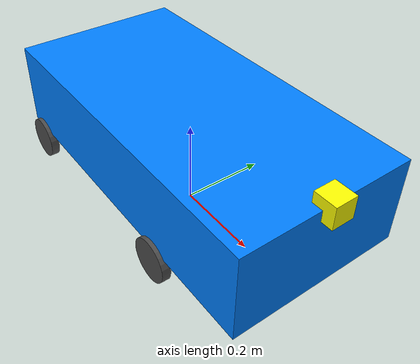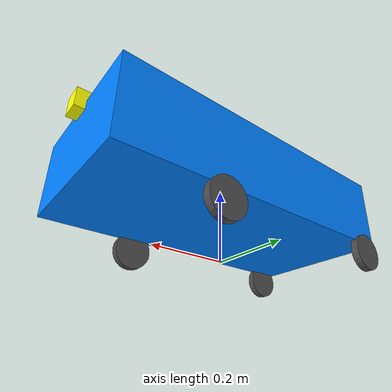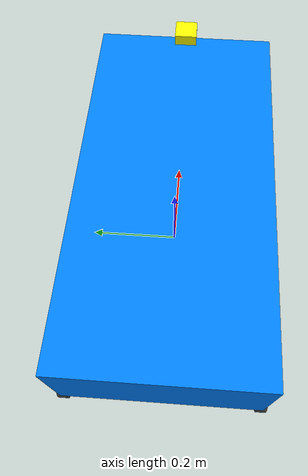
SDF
<?xml version="1.0"?>
<sdf version="1.6">
  <model name="sliping_robot">
    <static>false</static>
    <pose>0 0 0 0 0 0</pose>

    <!-- ============================
         P3D Plugin (if you re-enable)
         ============================ -->
    <plugin name="ground_truth_plugin" filename="libgazebo_ros_p3d.so">
      <frameName>world</frameName>
      <bodyName>base_link</bodyName>
      <topicName>ground_truth/odometry</topicName>
      <updateRate>30</updateRate>
    </plugin>

    <!-- ============================
         BASE LINK (with sensors)
         ============================ -->
    <link name="base_link">
      <selfCollide>false</selfCollide>
      <pose>0 0 0.18 0 0 0</pose>
      <inertial>
        <mass>5.0</mass>
        <inertia>
          <ixx>0.25</ixx><ixy>0.0</ixy><ixz>0.0</ixz>
          <iyy>0.25</iyy><iyz>0.0</iyz><izz>0.25</izz>
        </inertia>
      </inertial>

      <!-- Collision -->
      <collision name="base_collision">
        <geometry>
          <box>
            <size>0.8 0.4 0.2</size>
          </box>
        </geometry>
        <surface>
          <contact>
            <ode>
              <min_depth>0.001</min_depth>
              <max_vel>100</max_vel>
            </ode>
          </contact>
        </surface>
      </collision>

      <!-- Visual -->
      <visual name="base_visual">
        <geometry>
          <box>
            <size>0.8 0.4 0.2</size>
          </box>
        </geometry>
        <material>
          <ambient>0 0.5 1 1</ambient>
          <diffuse>0 0.5 1 1</diffuse>
        </material>
      </visual>
      <visual name="camera_imu_visual">
        <pose>0.4 0 0.1 0 0 0</pose>
        <geometry>
          <box>
            <size>0.05 0.05 0.05</size>
          </box>
        </geometry>
        <material>
          <ambient>1 1 0 1</ambient>
          <diffuse>1 1 0 1</diffuse>
        </material>
      </visual>

      <!-- IMU Sensor -->
      <sensor name="imu_sensor" type="imu">
        <pose>0.4 0 0.1 0 0 0</pose>
        <always_on>true</always_on>
        <plugin name="imu_plugin" filename="libgazebo_ros_imu_sensor.so">
          <topicName>/imu/data</topicName>
          <bodyName>base_link</bodyName>
          <updateRateHZ>200</updateRateHZ>
          <gaussianNoise>0.001</gaussianNoise>
          <frameName>base_link</frameName>
          <initialOrientationAsReference>false</initialOrientationAsReference>
        </plugin>
      </sensor>

      <!-- Camera Sensor -->
      <sensor name="camera_sensor" type="camera">
        <pose>0.4 0 0.1 0 0 0</pose>
        <camera>
          <horizontal_fov>1.0472</horizontal_fov>
          <image>
            <width>640</width>
            <height>480</height>
          </image>
          <clip>
            <near>0.05</near>
            <far>100</far>
          </clip>
        </camera>
        <always_on>true</always_on>
        <plugin name="camera_controller" filename="libgazebo_ros_camera.so">
          <alwaysOn>true</alwaysOn>
          <updateRate>20.0</updateRate>
          <cameraName>camera</cameraName>
          <imageTopicName>image_raw</imageTopicName>
          <cameraInfoTopicName>camera_info</cameraInfoTopicName>
          <frameName>base_link</frameName>
          <hackBaseline>0.0</hackBaseline>
        </plugin>
      </sensor>
    </link>

    <!-- =======================================
         FRONT-LEFT WHEEL LINK + CONTINUOUS JOINT
         ======================================= -->
    <link name="front_left_wheel">
      <!--
           cylinder rotated −1.5708 around X so its local Z→Y.
           Pose: x=0.15, y=+0.2, z=0.05 (just touching ground).
      -->
      <pose>0.15 0.2 0.05 -1.5708 0 0</pose>
      <inertial>
        <mass>0.1</mass>
        <inertia>
          <ixx>0.0007</ixx>
          <iyy>0.00013</iyy>
          <izz>0.0007</izz>
        </inertia>
      </inertial>

      <collision name="fl_collision">
        <geometry>
          <cylinder>
            <radius>0.05</radius>
            <length>0.02</length>
          </cylinder>
        </geometry>
        <surface>
          <friction>
            <ode>
              <mu1>1.0</mu1>
              <mu2>1.0</mu2>
              <kp>1e8</kp>
              <kd>1</kd>
            </ode>
          </friction>
          <contact>
            <ode>
              <kp>1e6</kp>
              <kd>1.0</kd>
              <max_vel>0.1</max_vel>
              <min_depth>0.001</min_depth>
            </ode>
          </contact>
        </surface>
      </collision>

      <visual name="fl_visual">
        <geometry>
          <cylinder>
            <radius>0.05</radius>
            <length>0.02</length>
          </cylinder>
        </geometry>
        <material>
          <ambient>0.3 0.3 0.3 1</ambient>
          <diffuse>0.3 0.3 0.3 1</diffuse>
        </material>
      </visual>
    </link>

    <joint name="front_left_joint" type="revolute">
      <parent>base_link</parent>
      <child>front_left_wheel</child>
      <axis>
        <!-- Because the cylinder’s local Z was rotated into Y, we roll around Y: -->
        <xyz>0 0 1</xyz>
        <limit>
          <effort>100000</effort>
          <velocity>100000</velocity>
          <lower>-1e16</lower>
          <upper> 1e16</upper>
        </limit>
        <dynamics>
          <damping>0.005</damping>
          <friction>0.01</friction>
        </dynamics>
      </axis>
    </joint>

    <!-- =======================================
         FRONT-RIGHT WHEEL LINK + CONTINUOUS JOINT
         ======================================= -->
    <link name="front_right_wheel">
      <pose>0.15 -0.2 0.05 -1.5708 0 0</pose>
      <inertial>
        <mass>0.1</mass>
        <inertia>
          <ixx>0.0007</ixx>
          <iyy>0.00013</iyy>
          <izz>0.0007</izz>
        </inertia>
      </inertial>

      <collision name="fr_collision">
        <geometry>
          <cylinder>
            <radius>0.05</radius>
            <length>0.02</length>
          </cylinder>
        </geometry>
        <surface>
          <friction>
            <ode>
              <mu1>1.0</mu1>
              <mu2>1.0</mu2>
              <kp>1e8</kp>
              <kd>1</kd>
            </ode>
          </friction>
          <contact>
            <ode>
              <kp>1e6</kp>
              <kd>1.0</kd>
              <max_vel>0.1</max_vel>
              <min_depth>0.001</min_depth>
            </ode>
          </contact>
        </surface>
      </collision>

      <visual name="fr_visual">
        <geometry>
          <cylinder>
            <radius>0.05</radius>
            <length>0.02</length>
          </cylinder>
        </geometry>
        <material>
          <ambient>0.3 0.3 0.3 1</ambient>
          <diffuse>0.3 0.3 0.3 1</diffuse>
        </material>
      </visual>
    </link>

    <joint name="front_right_joint" type="revolute">
      <parent>base_link</parent>
      <child>front_right_wheel</child>
      <axis>
        <xyz>0 0 1</xyz>
        <limit>
          <lower>-1e16</lower>
          <upper> 1e16</upper>
          <effort>1000000</effort>
          <velocity>1000</velocity>
        </limit>
        <dynamics>
          <damping>0.005</damping>
          <friction>0.01</friction>
        </dynamics>
      </axis>
    </joint>

    <!-- =======================================
         REAR-LEFT WHEEL LINK + REVOLUTE JOINT
         ======================================= -->
    <link name="rear_left_wheel">
      <pose>-0.35 0.2 0.05 -1.5708 0 0</pose>
      <inertial>
        <mass>0.1</mass>
        <inertia>
          <ixx>0.0007</ixx>
          <iyy>0.00013</iyy>
          <izz>0.0007</izz>
        </inertia>
      </inertial>

      <collision name="rl_collision">
        <geometry>
          <cylinder>
            <radius>0.05</radius>
            <length>0.02</length>
          </cylinder>
        </geometry>
        <surface>
          <friction>
            <ode>
              <mu1>0.5</mu1>
              <mu2>0.5</mu2>
              <kp>1e8</kp>
              <kd>1</kd>
            </ode>
          </friction>
          <contact>
            <ode>
              <kp>1e6</kp>
              <kd>1.0</kd>
              <max_vel>0.1</max_vel>
              <min_depth>0.001</min_depth>
            </ode>
          </contact>
        </surface>
      </collision>

      <visual name="rl_visual">
        <geometry>
          <cylinder>
            <radius>0.05</radius>
            <length>0.02</length>
          </cylinder>
        </geometry>
        <material>
          <ambient>0.3 0.3 0.3 1</ambient>
          <diffuse>0.3 0.3 0.3 1</diffuse>
        </material>
      </visual>
    </link>

    <joint name="rear_left_joint" type="revolute">
      <parent>base_link</parent>
      <child>rear_left_wheel</child>
      <axis>
        <!-- Revolute but with huge ± limits so it can spin continuously -->
        <xyz>0 0 1</xyz>
        <limit>
          <lower>-1e16</lower>
          <upper> 1e16</upper>
          <effort>100</effort>
          <velocity>1000</velocity>
        </limit>
        <dynamics>
          <damping>0.002</damping>
          <friction>0.005</friction>
        </dynamics>
      </axis>
    </joint>

    <!-- =======================================
         REAR-RIGHT WHEEL LINK + REVOLUTE JOINT
         ======================================= -->
    <link name="rear_right_wheel">
      <pose>-0.35 -0.2 0.05 -1.5708 0 0</pose>
      <inertial>
        <mass>0.1</mass>
        <inertia>
          <ixx>0.0007</ixx>
          <iyy>0.00013</iyy>
          <izz>0.0007</izz>
        </inertia>
      </inertial>

      <collision name="rr_collision">
        <geometry>
          <cylinder>
            <radius>0.05</radius>
            <length>0.02</length>
          </cylinder>
        </geometry>
        <surface>
          <friction>
            <ode>
              <mu1>0.5</mu1>
              <mu2>0.5</mu2>
              <kp>1e8</kp>
              <kd>1</kd>
            </ode>
          </friction>
          <contact>
            <ode>
              <kp>1e6</kp>
              <kd>1.0</kd>
              <max_vel>0.1</max_vel>
              <min_depth>0.001</min_depth>
            </ode>
          </contact>
        </surface>
      </collision>

      <visual name="rr_visual">
        <geometry>
          <cylinder>
            <radius>0.05</radius>
            <length>0.02</length>
          </cylinder>
        </geometry>
        <material>
          <ambient>0.3 0.3 0.3 1</ambient>
          <diffuse>0.3 0.3 0.3 1</diffuse>
        </material>
      </visual>
    </link>

    <joint name="rear_right_joint" type="revolute">
      <parent>base_link</parent>
      <child>rear_right_wheel</child>
      <axis>
        <xyz>0 0 1</xyz>
        <limit>
          <lower>-1e16</lower>
          <upper> 1e16</upper>
          <effort>100</effort>
          <velocity>1000</velocity>
        </limit>
        <dynamics>
          <damping>0.002</damping>
          <friction>0.005</friction>
        </dynamics>
      </axis>
    </joint>

    <!-- DC Motor plugin for front_right_joint -->
    <plugin name="gazebo_ros_control" filename="libgazebo_ros_control.so">
      <robotNamespace>/</robotNamespace>
    </plugin>

  </model>
</sdf>
